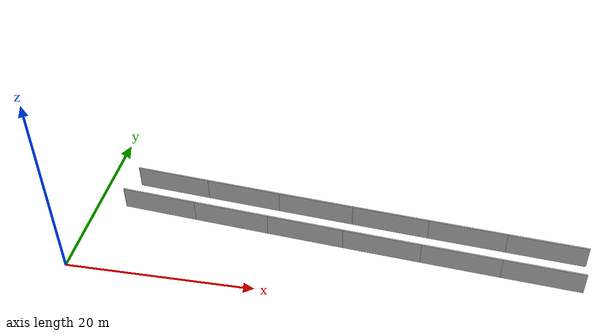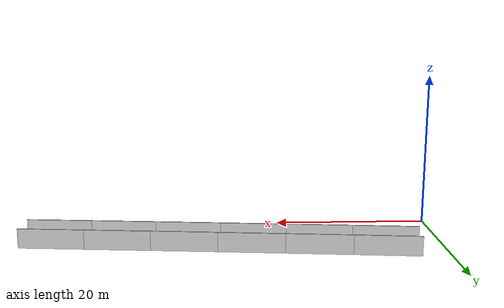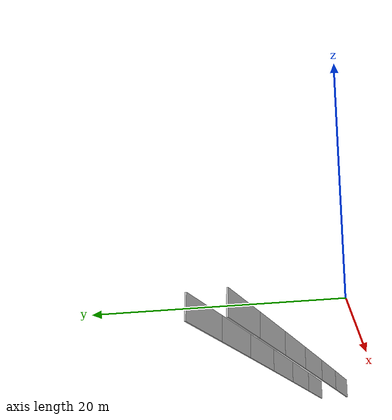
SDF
<?xml version="1.0" ?>
<sdf version="1.6">
  <model name="sps_3702">
    <pose frame="">0 0 0 0 -0 0</pose>
    <static>1</static>
    <self_collide>0</self_collide>
    <allow_auto_disable>0</allow_auto_disable>
    <link name="Wall4233">
      <kinematic>0</kinematic>
      <gravity>1</gravity>
      <self_collide>0</self_collide>
      <collision name="collision">
        <geometry>
          <box>
            <size>8.25171 0.15 2.5</size>
          </box>
        </geometry>
        <pose frame="">0 0 0 0 -0 0</pose>
      </collision>
      <visual name="visual">
        <geometry>
          <box>
            <size>8.25171 0.15 2.5</size>
          </box>
        </geometry>
        <pose frame="">0 0 0 0 -0 0</pose>
        <cast_shadows>1</cast_shadows>
        <transparency>0.0</transparency>
      </visual>
      <pose frame="">7.72854 13.094 1.25 0 0 -0.100341</pose>
    </link>
    <link name="Wall4234">
      <kinematic>0</kinematic>
      <gravity>1</gravity>
      <self_collide>0</self_collide>
      <collision name="collision">
        <geometry>
          <box>
            <size>8.25196 0.15 2.5</size>
          </box>
        </geometry>
        <pose frame="">0 0 0 0 -0 0</pose>
      </collision>
      <visual name="visual">
        <geometry>
          <box>
            <size>8.25196 0.15 2.5</size>
          </box>
        </geometry>
        <pose frame="">0 0 0 0 -0 0</pose>
        <cast_shadows>1</cast_shadows>
        <transparency>0.0</transparency>
      </visual>
      <pose frame="">15.9398 12.2772 1.25 0 0 -0.0979524</pose>
    </link>
    <link name="Wall4235">
      <kinematic>0</kinematic>
      <gravity>1</gravity>
      <self_collide>0</self_collide>
      <collision name="collision">
        <geometry>
          <box>
            <size>8.25192 0.15 2.5</size>
          </box>
        </geometry>
        <pose frame="">0 0 0 0 -0 0</pose>
      </collision>
      <visual name="visual">
        <geometry>
          <box>
            <size>8.25192 0.15 2.5</size>
          </box>
        </geometry>
        <pose frame="">0 0 0 0 -0 0</pose>
        <cast_shadows>1</cast_shadows>
        <transparency>0.0</transparency>
      </visual>
      <pose frame="">24.1532 11.4798 1.25 0 0 -0.0956119</pose>
    </link>
    <link name="Wall4236">
      <kinematic>0</kinematic>
      <gravity>1</gravity>
      <self_collide>0</self_collide>
      <collision name="collision">
        <geometry>
          <box>
            <size>8.25184 0.15 2.5</size>
          </box>
        </geometry>
        <pose frame="">0 0 0 0 -0 0</pose>
      </collision>
      <visual name="visual">
        <geometry>
          <box>
            <size>8.25184 0.15 2.5</size>
          </box>
        </geometry>
        <pose frame="">0 0 0 0 -0 0</pose>
        <cast_shadows>1</cast_shadows>
        <transparency>0.0</transparency>
      </visual>
      <pose frame="">32.3683 10.7018 1.25 0 0 -0.093228</pose>
    </link>
    <link name="Wall4237">
      <kinematic>0</kinematic>
      <gravity>1</gravity>
      <self_collide>0</self_collide>
      <collision name="collision">
        <geometry>
          <box>
            <size>8.25184 0.15 2.5</size>
          </box>
        </geometry>
        <pose frame="">0 0 0 0 -0 0</pose>
      </collision>
      <visual name="visual">
        <geometry>
          <box>
            <size>8.25184 0.15 2.5</size>
          </box>
        </geometry>
        <pose frame="">0 0 0 0 -0 0</pose>
        <cast_shadows>1</cast_shadows>
        <transparency>0.0</transparency>
      </visual>
      <pose frame="">40.5852 9.94319 1.25 0 0 -0.0908956</pose>
    </link>
    <link name="Wall4238">
      <kinematic>0</kinematic>
      <gravity>1</gravity>
      <self_collide>0</self_collide>
      <collision name="collision">
        <geometry>
          <box>
            <size>8.25208 0.15 2.5</size>
          </box>
        </geometry>
        <pose frame="">0 0 0 0 -0 0</pose>
      </collision>
      <visual name="visual">
        <geometry>
          <box>
            <size>8.25208 0.15 2.5</size>
          </box>
        </geometry>
        <pose frame="">0 0 0 0 -0 0</pose>
        <cast_shadows>1</cast_shadows>
        <transparency>0.0</transparency>
      </visual>
      <pose frame="">48.8039 9.20399 1.25 0 0 -0.0885017</pose>
    </link>
    <link name="Wall8975">
      <kinematic>0</kinematic>
      <gravity>1</gravity>
      <self_collide>0</self_collide>
      <collision name="collision">
        <geometry>
          <box>
            <size>8.26173 0.15 2.5</size>
          </box>
        </geometry>
        <pose frame="">0 0 0 0 -0 0</pose>
      </collision>
      <visual name="visual">
        <geometry>
          <box>
            <size>8.26173 0.15 2.5</size>
          </box>
        </geometry>
        <pose frame="">0 0 0 0 -0 0</pose>
        <cast_shadows>1</cast_shadows>
        <transparency>0.0</transparency>
      </visual>
      <pose frame="">7.22796 9.36879 1.25 0 0 -0.10036</pose>
    </link>
    <link name="Wall8976">
      <kinematic>0</kinematic>
      <gravity>1</gravity>
      <self_collide>0</self_collide>
      <collision name="collision">
        <geometry>
          <box>
            <size>8.26187 0.15 2.5</size>
          </box>
        </geometry>
        <pose frame="">0 0 0 0 -0 0</pose>
      </collision>
      <visual name="visual">
        <geometry>
          <box>
            <size>8.26187 0.15 2.5</size>
          </box>
        </geometry>
        <pose frame="">0 0 0 0 -0 0</pose>
        <cast_shadows>1</cast_shadows>
        <transparency>0.0</transparency>
      </visual>
      <pose frame="">15.4491 8.5507 1.25 0 0 -0.0980051</pose>
    </link>
    <link name="Wall8977">
      <kinematic>0</kinematic>
      <gravity>1</gravity>
      <self_collide>0</self_collide>
      <collision name="collision">
        <geometry>
          <box>
            <size>8.26176 0.15 2.5</size>
          </box>
        </geometry>
        <pose frame="">0 0 0 0 -0 0</pose>
      </collision>
      <visual name="visual">
        <geometry>
          <box>
            <size>8.26176 0.15 2.5</size>
          </box>
        </geometry>
        <pose frame="">0 0 0 0 -0 0</pose>
        <cast_shadows>1</cast_shadows>
        <transparency>0.0</transparency>
      </visual>
      <pose frame="">23.6723 7.752 1.25 0 0 -0.0956462</pose>
    </link>
    <link name="Wall8978">
      <kinematic>0</kinematic>
      <gravity>1</gravity>
      <self_collide>0</self_collide>
      <collision name="collision">
        <geometry>
          <box>
            <size>8.26167 0.15 2.5</size>
          </box>
        </geometry>
        <pose frame="">0 0 0 0 -0 0</pose>
      </collision>
      <visual name="visual">
        <geometry>
          <box>
            <size>8.26167 0.15 2.5</size>
          </box>
        </geometry>
        <pose frame="">0 0 0 0 -0 0</pose>
        <cast_shadows>1</cast_shadows>
        <transparency>0.0</transparency>
      </visual>
      <pose frame="">31.8971 6.97279 1.25 0 0 -0.0932651</pose>
    </link>
    <link name="Wall8979">
      <kinematic>0</kinematic>
      <gravity>1</gravity>
      <self_collide>0</self_collide>
      <collision name="collision">
        <geometry>
          <box>
            <size>8.26171 0.15 2.5</size>
          </box>
        </geometry>
        <pose frame="">0 0 0 0 -0 0</pose>
      </collision>
      <visual name="visual">
        <geometry>
          <box>
            <size>8.26171 0.15 2.5</size>
          </box>
        </geometry>
        <pose frame="">0 0 0 0 -0 0</pose>
        <cast_shadows>1</cast_shadows>
        <transparency>0.0</transparency>
      </visual>
      <pose frame="">40.1238 6.21309 1.25 0 0 -0.0909054</pose>
    </link>
    <link name="Wall8980">
      <kinematic>0</kinematic>
      <gravity>1</gravity>
      <self_collide>0</self_collide>
      <collision name="collision">
        <geometry>
          <box>
            <size>8.2618 0.15 2.5</size>
          </box>
        </geometry>
        <pose frame="">0 0 0 0 -0 0</pose>
      </collision>
      <visual name="visual">
        <geometry>
          <box>
            <size>8.2618 0.15 2.5</size>
          </box>
        </geometry>
        <pose frame="">0 0 0 0 -0 0</pose>
        <cast_shadows>1</cast_shadows>
        <transparency>0.0</transparency>
      </visual>
      <pose frame="">48.3523 5.47279 1.25 0 0 -0.0885457</pose>
    </link>
  </model>
</sdf>
